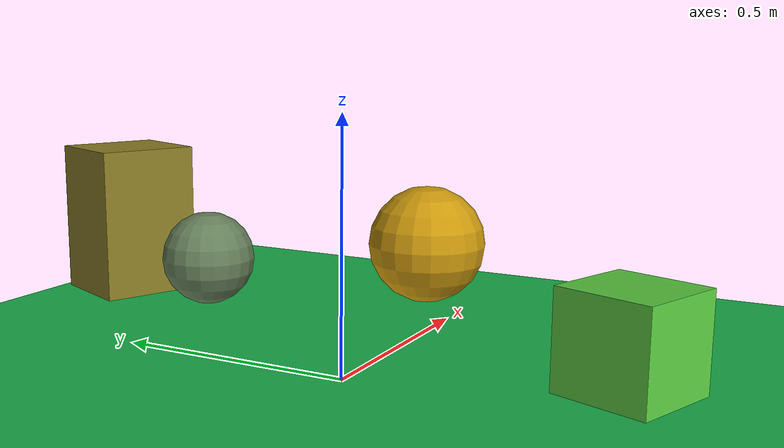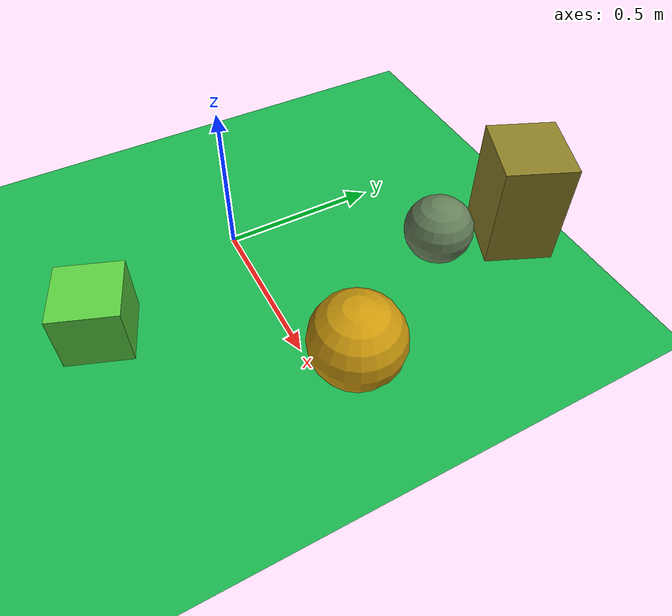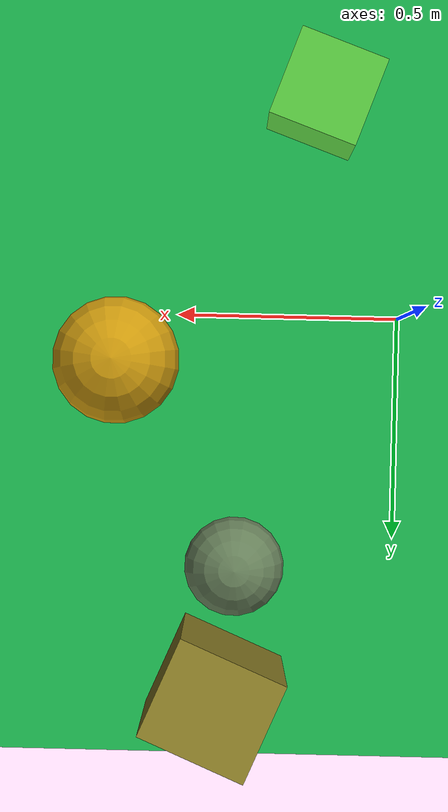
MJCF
<mujoco>
   <asset>
<texture type="skybox" builtin="gradient" rgb1="0.1 0.4 0.8" rgb2="0.4 0.2 0.5" width="256" height="256"/>
<texture name="gradient_0" builtin="gradient" rgb1="0.1 0.8 0.1" rgb2="0.6 0.8 0.4" width="200" height="200"/>
<texture name="checker_1" builtin="checker" rgb1="0.8 0.4 0.1" rgb2="0.8 0.8 0.0" width="200" height="200"/>
<texture name="checker_2" builtin="checker" rgb1="0.4 0.9 0.3" rgb2="0.4 0.1 0.4" width="200" height="200"/>
<texture name="gradient_3" builtin="gradient" rgb1="0.5 0.3 0.0" rgb2="0.6 0.7 0.3" width="200" height="200"/><material name="gradient_0_mat" reflectance="0" texture="gradient_0" texuniform="true"/>
<material name="checker_1_mat" reflectance="0" texrepeat="2 2" texture="checker_1" texuniform="false" />
<material name="checker_2_mat" reflectance="0" texrepeat="6 6" texture="checker_2" texuniform="false" />
<material name="gradient_3_mat" reflectance="0" texture="gradient_3" texuniform="true"/>
   </asset>

   <worldbody>
      <light diffuse=".9 .9 .9" pos="0 0 3" dir="0 0 -1"/>
     <geom type="plane" size="1 1 0.1" rgba="0.1 0.7 0.3 1"/>
<geom type="box" pos="0.18 -0.49 0.1" size="0.1 0.1 0.1" material="gradient_0_mat" euler="0 0 70" />
<geom type="sphere" pos="0.63 0.11 0.14" size="0.14 0.14 0.14" material="checker_1_mat" euler="0 0 46" />
<geom type="sphere" pos="0.36 0.56 0.11" size="0.11 0.11 0.11" material="checker_2_mat" euler="0 0 25" />
<geom type="box" pos="0.4 0.83 0.18" size="0.11 0.12 0.18" material="gradient_3_mat" euler="0 0 67" /><camera euler="60 0 180" fovy="60" name="camera1" pos="-0.2 -1.5 1"></camera>   </worldbody>
</mujoco>
